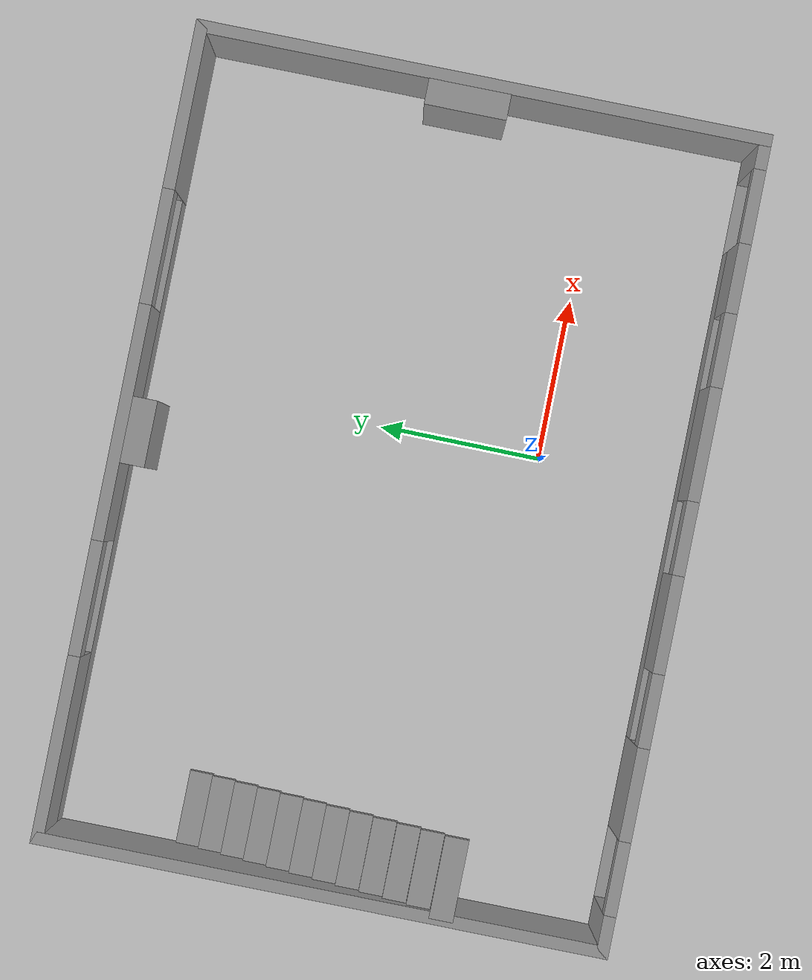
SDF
<sdf version="1.7">
 <world name="default">
  <light name="sun" type="directional">
   <pose>0 0 10 0 -0 0</pose>
   <diffuse>0.8 0.8 0.8 1</diffuse>
   <specular>0.2 0.2 0.2 1</specular>
   <attenuation>
    <range>1000</range>
    <constant>0.9</constant>
    <linear>0.01</linear>
    <quadratic>0.001</quadratic>
   </attenuation>
   <direction>-0.5 0.1 -0.9</direction>
   <spot><inner_angle>0</inner_angle><outer_angle>0</outer_angle><falloff>0</falloff></spot>
  </light>
  <model name="ground_plane">
   <static>1</static>
   <link name="link">
    <collision name="collision">
     <geometry><plane><normal>0 0 1</normal><size>100 100</size></plane></geometry>
     <surface>
      <contact><collide_bitmask>65535</collide_bitmask></contact>
      <friction><ode><mu>100</mu><mu2>50</mu2></ode></friction>
     </surface>
    </collision>
    <visual name="visual">
     <cast_shadows>0</cast_shadows>
     <geometry><plane><normal>0 0 1</normal><size>100 100</size></plane></geometry>
     <material>
      <script><uri>file://media/materials/scripts/gazebo.material</uri><name>Gazebo/Grey</name></script>
     </material>
    </visual>
   </link>
  </model>
  <gravity>0 0 -9.8</gravity>
  <magnetic_field>6e-06 2.3e-05 -4.2e-05</magnetic_field>
  <atmosphere type="adiabatic"/>
  <physics type="ode">
   <max_step_size>0.001</max_step_size>
   <real_time_factor>1</real_time_factor>
   <real_time_update_rate>1000</real_time_update_rate>
  </physics>
  <scene><ambient>0.4 0.4 0.4 1</ambient><background>0.7 0.7 0.7 1</background><shadows>1</shadows></scene>
  <spherical_coordinates>
   <surface_model>EARTH_WGS84</surface_model>
   <latitude_deg>0</latitude_deg>
   <longitude_deg>0</longitude_deg>
   <elevation>0</elevation>
   <heading_deg>0</heading_deg>
  </spherical_coordinates>
  <model name="room_2">
   <pose>-0.715 1.595 0 0 -0 0</pose>
   <link name="Stairs_1">
    <visual name="Stairs_1_Visual_0">
     <pose>-4.43499 1.74289 0.083333 0 -0 0</pose>
     <geometry><box><size>1 0.291667 0.166667</size></box></geometry>
     <material>
      <script><uri>file://media/materials/scripts/gazebo.material</uri><name>Gazebo/Grey</name></script>
      <ambient>1 1 1 1</ambient>
     </material>
     <meta><layer>0</layer></meta>
    </visual>
    <collision name="Stairs_1_Collision_0">
     <geometry><box><size>1 0.291667 0.166667</size></box></geometry>
     <pose>-4.43499 1.74289 0.083333 0 -0 0</pose>
    </collision>
    <visual name="Stairs_1_Visual_1">
     <pose>-4.43499 1.45122 0.25 0 -0 0</pose>
     <geometry><box><size>1 0.291667 0.166667</size></box></geometry>
     <material>
      <script><uri>file://media/materials/scripts/gazebo.material</uri><name>Gazebo/Grey</name></script>
      <ambient>1 1 1 1</ambient>
     </material>
     <meta><layer>0</layer></meta>
    </visual>
    <collision name="Stairs_1_Collision_1">
     <geometry><box><size>1 0.291667 0.166667</size></box></geometry>
     <pose>-4.43499 1.45122 0.25 0 -0 0</pose>
    </collision>
    <visual name="Stairs_1_Visual_2">
     <pose>-4.43499 1.15956 0.416667 0 -0 0</pose>
     <geometry><box><size>1 0.291667 0.166667</size></box></geometry>
     <material>
      <script><uri>file://media/materials/scripts/gazebo.material</uri><name>Gazebo/Grey</name></script>
      <ambient>1 1 1 1</ambient>
     </material>
     <meta><layer>0</layer></meta>
    </visual>
    <collision name="Stairs_1_Collision_2">
     <geometry><box><size>1 0.291667 0.166667</size></box></geometry>
     <pose>-4.43499 1.15956 0.416667 0 -0 0</pose>
    </collision>
    <visual name="Stairs_1_Visual_3">
     <pose>-4.43499 0.867889 0.583333 0 -0 0</pose>
     <geometry><box><size>1 0.291667 0.166667</size></box></geometry>
     <material>
      <script><uri>file://media/materials/scripts/gazebo.material</uri><name>Gazebo/Grey</name></script>
      <ambient>1 1 1 1</ambient>
     </material>
     <meta><layer>0</layer></meta>
    </visual>
    <collision name="Stairs_1_Collision_3">
     <geometry><box><size>1 0.291667 0.166667</size></box></geometry>
     <pose>-4.43499 0.867889 0.583333 0 -0 0</pose>
    </collision>
    <visual name="Stairs_1_Visual_4">
     <pose>-4.43499 0.576223 0.75 0 -0 0</pose>
     <geometry><box><size>1 0.291667 0.166667</size></box></geometry>
     <material>
      <script><uri>file://media/materials/scripts/gazebo.material</uri><name>Gazebo/Grey</name></script>
      <ambient>1 1 1 1</ambient>
     </material>
     <meta><layer>0</layer></meta>
    </visual>
    <collision name="Stairs_1_Collision_4">
     <geometry><box><size>1 0.291667 0.166667</size></box></geometry>
     <pose>-4.43499 0.576223 0.75 0 -0 0</pose>
    </collision>
    <visual name="Stairs_1_Visual_5">
     <pose>-4.43499 0.284556 0.916667 0 -0 0</pose>
     <geometry><box><size>1 0.291667 0.166667</size></box></geometry>
     <material>
      <script><uri>file://media/materials/scripts/gazebo.material</uri><name>Gazebo/Grey</name></script>
      <ambient>1 1 1 1</ambient>
     </material>
     <meta><layer>0</layer></meta>
    </visual>
    <collision name="Stairs_1_Collision_5">
     <geometry><box><size>1 0.291667 0.166667</size></box></geometry>
     <pose>-4.43499 0.284556 0.916667 0 -0 0</pose>
    </collision>
    <visual name="Stairs_1_Visual_6">
     <pose>-4.43499 -0.007111 1.08333 0 -0 0</pose>
     <geometry><box><size>1 0.291667 0.166667</size></box></geometry>
     <material>
      <script><uri>file://media/materials/scripts/gazebo.material</uri><name>Gazebo/Grey</name></script>
      <ambient>1 1 1 1</ambient>
     </material>
     <meta><layer>0</layer></meta>
    </visual>
    <collision name="Stairs_1_Collision_6">
     <geometry><box><size>1 0.291667 0.166667</size></box></geometry>
     <pose>-4.43499 -0.007111 1.08333 0 -0 0</pose>
    </collision>
    <visual name="Stairs_1_Visual_7">
     <pose>-4.43499 -0.298777 1.25 0 -0 0</pose>
     <geometry><box><size>1 0.291667 0.166667</size></box></geometry>
     <material>
      <script><uri>file://media/materials/scripts/gazebo.material</uri><name>Gazebo/Grey</name></script>
      <ambient>1 1 1 1</ambient>
     </material>
     <meta><layer>0</layer></meta>
    </visual>
    <collision name="Stairs_1_Collision_7">
     <geometry><box><size>1 0.291667 0.166667</size></box></geometry>
     <pose>-4.43499 -0.298777 1.25 0 -0 0</pose>
    </collision>
    <visual name="Stairs_1_Visual_8">
     <pose>-4.43499 -0.590444 1.41667 0 -0 0</pose>
     <geometry><box><size>1 0.291667 0.166667</size></box></geometry>
     <material>
      <script><uri>file://media/materials/scripts/gazebo.material</uri><name>Gazebo/Grey</name></script>
      <ambient>1 1 1 1</ambient>
     </material>
     <meta><layer>0</layer></meta>
    </visual>
    <collision name="Stairs_1_Collision_8">
     <geometry><box><size>1 0.291667 0.166667</size></box></geometry>
     <pose>-4.43499 -0.590444 1.41667 0 -0 0</pose>
    </collision>
    <visual name="Stairs_1_Visual_9">
     <pose>-4.43499 -0.88211 1.58333 0 -0 0</pose>
     <geometry><box><size>1 0.291667 0.166667</size></box></geometry>
     <material>
      <script><uri>file://media/materials/scripts/gazebo.material</uri><name>Gazebo/Grey</name></script>
      <ambient>1 1 1 1</ambient>
     </material>
     <meta><layer>0</layer></meta>
    </visual>
    <collision name="Stairs_1_Collision_9">
     <geometry><box><size>1 0.291667 0.166667</size></box></geometry>
     <pose>-4.43499 -0.88211 1.58333 0 -0 0</pose>
    </collision>
    <visual name="Stairs_1_Visual_10">
     <pose>-4.43499 -1.17378 1.75 0 -0 0</pose>
     <geometry><box><size>1 0.291667 0.166667</size></box></geometry>
     <material>
      <script><uri>file://media/materials/scripts/gazebo.material</uri><name>Gazebo/Grey</name></script>
      <ambient>1 1 1 1</ambient>
     </material>
     <meta><layer>0</layer></meta>
    </visual>
    <collision name="Stairs_1_Collision_10">
     <geometry><box><size>1 0.291667 0.166667</size></box></geometry>
     <pose>-4.43499 -1.17378 1.75 0 -0 0</pose>
    </collision>
    <visual name="Stairs_1_Visual_11">
     <pose>-4.43499 -1.46544 1.91667 0 -0 0</pose>
     <geometry><box><size>1 0.291667 0.166667</size></box></geometry>
     <material>
      <script><uri>file://media/materials/scripts/gazebo.material</uri><name>Gazebo/Grey</name></script>
      <ambient>1 1 1 1</ambient>
     </material>
     <meta><layer>0</layer></meta>
    </visual>
    <collision name="Stairs_1_Collision_11">
     <geometry><box><size>1 0.291667 0.166667</size></box></geometry>
     <pose>-4.43499 -1.46544 1.91667 0 -0 0</pose>
    </collision>
   </link>
   <link name="Wall_0">
    <pose>-0 -3.425 0 0 -0 0</pose>
    <visual name="Wall_0_Visual_0">
     <pose>-4.74494 0 1 0 -0 0</pose>
     <geometry><box><size>0.510112 0.15 2</size></box></geometry>
     <material>
      <script><uri>file://media/materials/scripts/gazebo.material</uri><name>Gazebo/Grey</name></script>
      <ambient>1 1 1 1</ambient>
     </material>
     <meta><layer>0</layer></meta>
    </visual>
    <collision name="Wall_0_Collision_0">
     <geometry><box><size>0.510112 0.15 2</size></box></geometry>
     <pose>-4.74494 0 1 0 -0 0</pose>
    </collision>
    <visual name="Wall_0_Visual_1">
     <pose>-3.02363 0 1 0 -0 0</pose>
     <geometry><box><size>1.13252 0.15 2</size></box></geometry>
     <material>
      <script><uri>file://media/materials/scripts/gazebo.material</uri><name>Gazebo/Grey</name></script>
      <ambient>1 1 1 1</ambient>
     </material>
     <meta><layer>0</layer></meta>
    </visual>
    <collision name="Wall_0_Collision_1">
     <geometry><box><size>1.13252 0.15 2</size></box></geometry>
     <pose>-3.02363 0 1 0 -0 0</pose>
    </collision>
    <visual name="Wall_0_Visual_2">
     <pose>4.78154 0 1 0 -0 0</pose>
     <geometry><box><size>0.436927 0.15 2</size></box></geometry>
     <material>
      <script><uri>file://media/materials/scripts/gazebo.material</uri><name>Gazebo/Grey</name></script>
      <ambient>1 1 1 1</ambient>
     </material>
     <meta><layer>0</layer></meta>
    </visual>
    <collision name="Wall_0_Collision_2">
     <geometry><box><size>0.436927 0.15 2</size></box></geometry>
     <pose>4.78154 0 1 0 -0 0</pose>
    </collision>
    <visual name="Wall_0_Visual_3">
     <pose>-4.03989 0 0 0 -0 0</pose>
     <geometry><box><size>0.9 0.15 0</size></box></geometry>
     <material>
      <script><uri>file://media/materials/scripts/gazebo.material</uri><name>Gazebo/Grey</name></script>
      <ambient>1 1 1 1</ambient>
     </material>
     <meta><layer>0</layer></meta>
    </visual>
    <collision name="Wall_0_Collision_3">
     <geometry><box><size>0.9 0.15 0</size></box></geometry>
     <pose>-4.03989 0 0 0 -0 0</pose>
    </collision>
    <visual name="Wall_0_Visual_4">
     <pose>0.602855 0 0.3 0 -0 0</pose>
     <geometry><box><size>6.12044 0.15 0.6</size></box></geometry>
     <material>
      <script><uri>file://media/materials/scripts/gazebo.material</uri><name>Gazebo/Grey</name></script>
      <ambient>1 1 1 1</ambient>
     </material>
     <meta><layer>0</layer></meta>
    </visual>
    <collision name="Wall_0_Collision_4">
     <geometry><box><size>6.12044 0.15 0.6</size></box></geometry>
     <pose>0.602855 0 0.3 0 -0 0</pose>
    </collision>
    <visual name="Wall_0_Visual_5">
     <pose>4.11307 0 0 0 -0 0</pose>
     <geometry><box><size>0.9 0.15 0</size></box></geometry>
     <material>
      <script><uri>file://media/materials/scripts/gazebo.material</uri><name>Gazebo/Grey</name></script>
      <ambient>1 1 1 1</ambient>
     </material>
     <meta><layer>0</layer></meta>
    </visual>
    <collision name="Wall_0_Collision_5">
     <geometry><box><size>0.9 0.15 0</size></box></geometry>
     <pose>4.11307 0 0 0 -0 0</pose>
    </collision>
    <visual name="Wall_0_Visual_6">
     <pose>-0.961458 0 1.3 0 -0 0</pose>
     <geometry><box><size>1.19181 0.15 1.4</size></box></geometry>
     <material>
      <script><uri>file://media/materials/scripts/gazebo.material</uri><name>Gazebo/Grey</name></script>
      <ambient>1 1 1 1</ambient>
     </material>
     <meta><layer>0</layer></meta>
    </visual>
    <collision name="Wall_0_Collision_6">
     <geometry><box><size>1.19181 0.15 1.4</size></box></geometry>
     <pose>-0.961458 0 1.3 0 -0 0</pose>
    </collision>
    <visual name="Wall_0_Visual_7">
     <pose>1.22589 0 1.3 0 -0 0</pose>
     <geometry><box><size>1.38289 0.15 1.4</size></box></geometry>
     <material>
      <script><uri>file://media/materials/scripts/gazebo.material</uri><name>Gazebo/Grey</name></script>
      <ambient>1 1 1 1</ambient>
     </material>
     <meta><layer>0</layer></meta>
    </visual>
    <collision name="Wall_0_Collision_7">
     <geometry><box><size>1.38289 0.15 1.4</size></box></geometry>
     <pose>1.22589 0 1.3 0 -0 0</pose>
    </collision>
    <visual name="Wall_0_Visual_8">
     <pose>3.24021 0 1.3 0 -0 0</pose>
     <geometry><box><size>0.845735 0.15 1.4</size></box></geometry>
     <material>
      <script><uri>file://media/materials/scripts/gazebo.material</uri><name>Gazebo/Grey</name></script>
      <ambient>1 1 1 1</ambient>
     </material>
     <meta><layer>0</layer></meta>
    </visual>
    <collision name="Wall_0_Collision_8">
     <geometry><box><size>0.845735 0.15 1.4</size></box></geometry>
     <pose>3.24021 0 1.3 0 -0 0</pose>
    </collision>
    <visual name="Wall_0_Visual_9">
     <pose>-2.00736 0 1.75 0 -0 0</pose>
     <geometry><box><size>0.9 0.15 0.5</size></box></geometry>
     <material>
      <script><uri>file://media/materials/scripts/gazebo.material</uri><name>Gazebo/Grey</name></script>
      <ambient>1 1 1 1</ambient>
     </material>
     <meta><layer>0</layer></meta>
    </visual>
    <collision name="Wall_0_Collision_9">
     <geometry><box><size>0.9 0.15 0.5</size></box></geometry>
     <pose>-2.00736 0 1.75 0 -0 0</pose>
    </collision>
    <visual name="Wall_0_Visual_10">
     <pose>0.084448 0 1.75 0 -0 0</pose>
     <geometry><box><size>0.9 0.15 0.5</size></box></geometry>
     <material>
      <script><uri>file://media/materials/scripts/gazebo.material</uri><name>Gazebo/Grey</name></script>
      <ambient>1 1 1 1</ambient>
     </material>
     <meta><layer>0</layer></meta>
    </visual>
    <collision name="Wall_0_Collision_10">
     <geometry><box><size>0.9 0.15 0.5</size></box></geometry>
     <pose>0.084448 0 1.75 0 -0 0</pose>
    </collision>
    <visual name="Wall_0_Visual_11">
     <pose>2.36734 0 1.75 0 -0 0</pose>
     <geometry><box><size>0.9 0.15 0.5</size></box></geometry>
     <material>
      <script><uri>file://media/materials/scripts/gazebo.material</uri><name>Gazebo/Grey</name></script>
      <ambient>1 1 1 1</ambient>
     </material>
     <meta><layer>0</layer></meta>
    </visual>
    <collision name="Wall_0_Collision_11">
     <geometry><box><size>0.9 0.15 0.5</size></box></geometry>
     <pose>2.36734 0 1.75 0 -0 0</pose>
    </collision>
    <visual name="Wall_0_Visual_12">
     <pose>-4.03989 0 1.85 0 -0 0</pose>
     <geometry><box><size>0.9 0.15 0.3</size></box></geometry>
     <material>
      <script><uri>file://media/materials/scripts/gazebo.material</uri><name>Gazebo/Grey</name></script>
      <ambient>1 1 1 1</ambient>
     </material>
     <meta><layer>0</layer></meta>
    </visual>
    <collision name="Wall_0_Collision_12">
     <geometry><box><size>0.9 0.15 0.3</size></box></geometry>
     <pose>-4.03989 0 1.85 0 -0 0</pose>
    </collision>
    <visual name="Wall_0_Visual_13">
     <pose>4.11307 0 1.85 0 -0 0</pose>
     <geometry><box><size>0.9 0.15 0.3</size></box></geometry>
     <material>
      <script><uri>file://media/materials/scripts/gazebo.material</uri><name>Gazebo/Grey</name></script>
      <ambient>1 1 1 1</ambient>
     </material>
     <meta><layer>0</layer></meta>
    </visual>
    <collision name="Wall_0_Collision_13">
     <geometry><box><size>0.9 0.15 0.3</size></box></geometry>
     <pose>4.11307 0 1.85 0 -0 0</pose>
    </collision>
   </link>
   <link name="Wall_1">
    <collision name="Wall_1_Collision">
     <geometry><box><size>7 0.15 2</size></box></geometry>
     <pose>0 0 1 0 -0 0</pose>
    </collision>
    <visual name="Wall_1_Visual">
     <pose>0 0 1 0 -0 0</pose>
     <geometry><box><size>7 0.15 2</size></box></geometry>
     <material>
      <script><uri>file://media/materials/scripts/gazebo.material</uri><name>Gazebo/Grey</name></script>
      <ambient>1 1 1 1</ambient>
     </material>
     <meta><layer>0</layer></meta>
    </visual>
    <pose>4.925 0 0 0 -0 1.5708</pose>
   </link>
   <link name="Wall_2">
    <pose>-0 3.425 0 0 -0 3.14159</pose>
    <visual name="Wall_2_Visual_0">
     <pose>-3.97488 0 1 0 -0 0</pose>
     <geometry><box><size>2.05025 0.15 2</size></box></geometry>
     <material>
      <script><uri>file://media/materials/scripts/gazebo.material</uri><name>Gazebo/Grey</name></script>
      <ambient>1 1 1 1</ambient>
     </material>
     <meta><layer>0</layer></meta>
    </visual>
    <collision name="Wall_2_Collision_0">
     <geometry><box><size>2.05025 0.15 2</size></box></geometry>
     <pose>-3.97488 0 1 0 -0 0</pose>
    </collision>
    <visual name="Wall_2_Visual_1">
     <pose>1.02512 0 0.3 0 -0 0</pose>
     <geometry><box><size>7.94975 0.15 0.6</size></box></geometry>
     <material>
      <script><uri>file://media/materials/scripts/gazebo.material</uri><name>Gazebo/Grey</name></script>
      <ambient>1 1 1 1</ambient>
     </material>
     <meta><layer>0</layer></meta>
    </visual>
    <collision name="Wall_2_Collision_1">
     <geometry><box><size>7.94975 0.15 0.6</size></box></geometry>
     <pose>1.02512 0 0.3 0 -0 0</pose>
    </collision>
    <visual name="Wall_2_Visual_2">
     <pose>-0.115954 0 1.3 0 -0 0</pose>
     <geometry><box><size>2.8676 0.15 1.4</size></box></geometry>
     <material>
      <script><uri>file://media/materials/scripts/gazebo.material</uri><name>Gazebo/Grey</name></script>
      <ambient>1 1 1 1</ambient>
     </material>
     <meta><layer>0</layer></meta>
    </visual>
    <collision name="Wall_2_Collision_2">
     <geometry><box><size>2.8676 0.15 1.4</size></box></geometry>
     <pose>-0.115954 0 1.3 0 -0 0</pose>
    </collision>
    <visual name="Wall_2_Visual_3">
     <pose>3.85892 0 1.3 0 -0 0</pose>
     <geometry><box><size>2.28215 0.15 1.4</size></box></geometry>
     <material>
      <script><uri>file://media/materials/scripts/gazebo.material</uri><name>Gazebo/Grey</name></script>
      <ambient>1 1 1 1</ambient>
     </material>
     <meta><layer>0</layer></meta>
    </visual>
    <collision name="Wall_2_Collision_3">
     <geometry><box><size>2.28215 0.15 1.4</size></box></geometry>
     <pose>3.85892 0 1.3 0 -0 0</pose>
    </collision>
    <visual name="Wall_2_Visual_4">
     <pose>-2.24975 0 1.75 0 -0 0</pose>
     <geometry><box><size>1.4 0.15 0.5</size></box></geometry>
     <material>
      <script><uri>file://media/materials/scripts/gazebo.material</uri><name>Gazebo/Grey</name></script>
      <ambient>1 1 1 1</ambient>
     </material>
     <meta><layer>0</layer></meta>
    </visual>
    <collision name="Wall_2_Collision_4">
     <geometry><box><size>1.4 0.15 0.5</size></box></geometry>
     <pose>-2.24975 0 1.75 0 -0 0</pose>
    </collision>
    <visual name="Wall_2_Visual_5">
     <pose>2.01784 0 1.75 0 -0 0</pose>
     <geometry><box><size>1.4 0.15 0.5</size></box></geometry>
     <material>
      <script><uri>file://media/materials/scripts/gazebo.material</uri><name>Gazebo/Grey</name></script>
      <ambient>1 1 1 1</ambient>
     </material>
     <meta><layer>0</layer></meta>
    </visual>
    <collision name="Wall_2_Collision_5">
     <geometry><box><size>1.4 0.15 0.5</size></box></geometry>
     <pose>2.01784 0 1.75 0 -0 0</pose>
    </collision>
   </link>
   <link name="Wall_3">
    <collision name="Wall_3_Collision">
     <geometry><box><size>7 0.15 2</size></box></geometry>
     <pose>0 0 1 0 -0 0</pose>
    </collision>
    <visual name="Wall_3_Visual">
     <pose>0 0 1 0 -0 0</pose>
     <geometry><box><size>7 0.15 2</size></box></geometry>
     <material>
      <script><uri>file://media/materials/scripts/gazebo.material</uri><name>Gazebo/Grey</name></script>
      <ambient>1 1 1 1</ambient>
     </material>
     <meta><layer>0</layer></meta>
    </visual>
    <pose>-4.925 0 0 0 -0 -1.5708</pose>
   </link>
   <static>1</static>
  </model>
  <model name="unit_box">
   <pose>-0.670461 4.79511 1.00401 1e-06 -0 -3e-06</pose>
   <link name="link">
    <inertial>
     <mass>1</mass>
     <inertia>
      <ixx>0.166667</ixx>
      <ixy>0</ixy>
      <ixz>0</ixz>
      <iyy>0.166667</iyy>
      <iyz>0</iyz>
      <izz>0.166667</izz>
     </inertia>
    </inertial>
    <collision name="collision"><geometry><box><size>0.810085 0.299785 2.00801</size></box></geometry></collision>
    <visual name="visual">
     <geometry><box><size>0.810085 0.299785 2.00801</size></box></geometry>
     <material>
      <script><name>Gazebo/Grey</name><uri>file://media/materials/scripts/gazebo.material</uri></script>
     </material>
    </visual>
   </link>
  </model>
  <model name="unit_box_0">
   <pose>3.97726 1.74294 1.01865 0 -0 7e-06</pose>
   <link name="link">
    <inertial>
     <mass>1</mass>
     <inertia>
      <ixx>0.166667</ixx>
      <ixy>0</ixy>
      <ixz>0</ixz>
      <iyy>0.166667</iyy>
      <iyz>0</iyz>
      <izz>0.166667</izz>
     </inertia>
    </inertial>
    <collision name="collision"><geometry><box><size>0.315476 1 2.0373</size></box></geometry></collision>
    <visual name="visual">
     <geometry><box><size>0.315476 1 2.0373</size></box></geometry>
     <material>
      <script><name>Gazebo/Grey</name><uri>file://media/materials/scripts/gazebo.material</uri></script>
     </material>
    </visual>
   </link>
  </model>
 </world>
</sdf>
